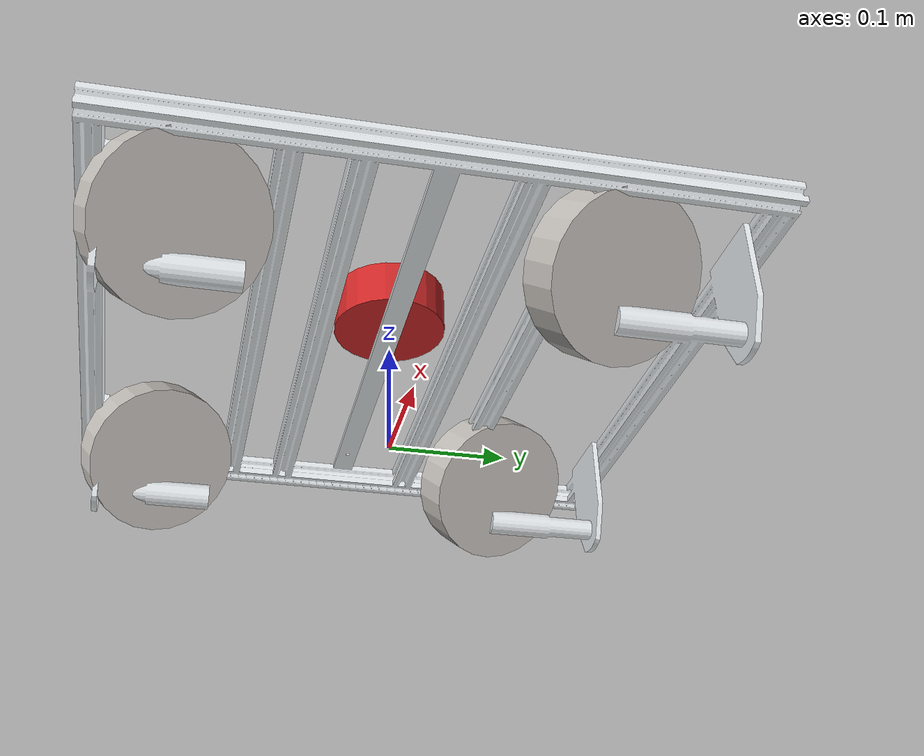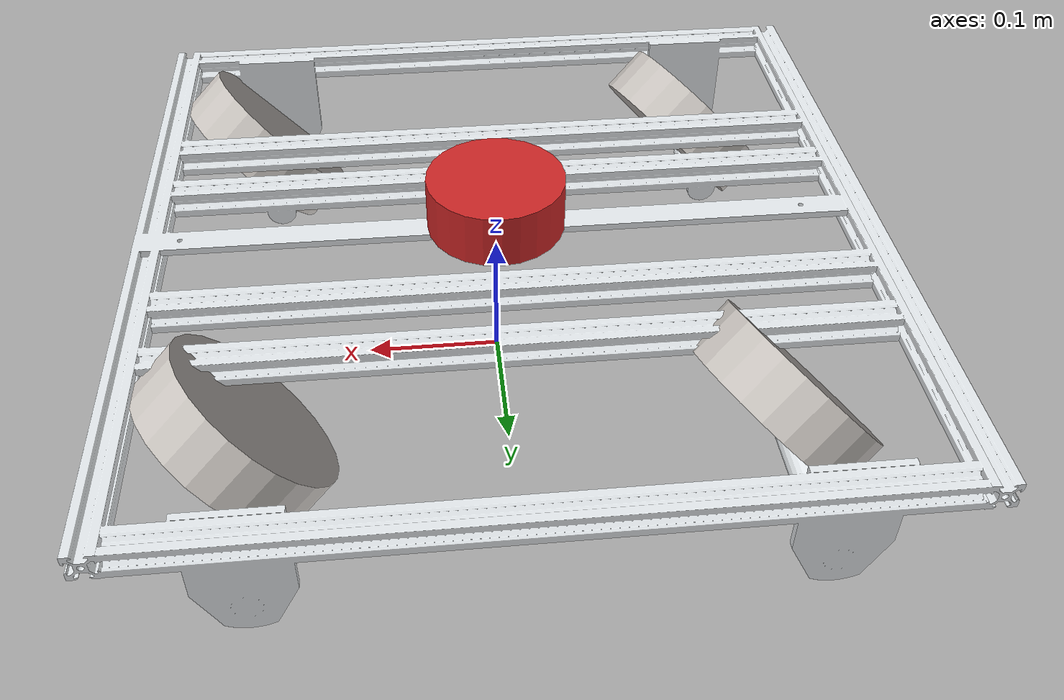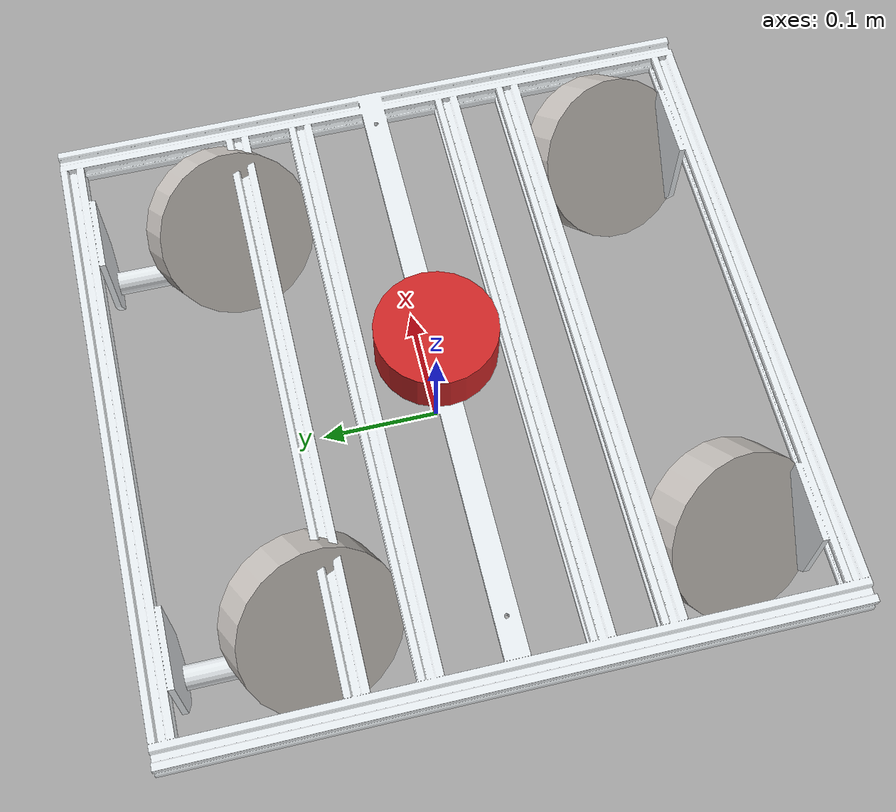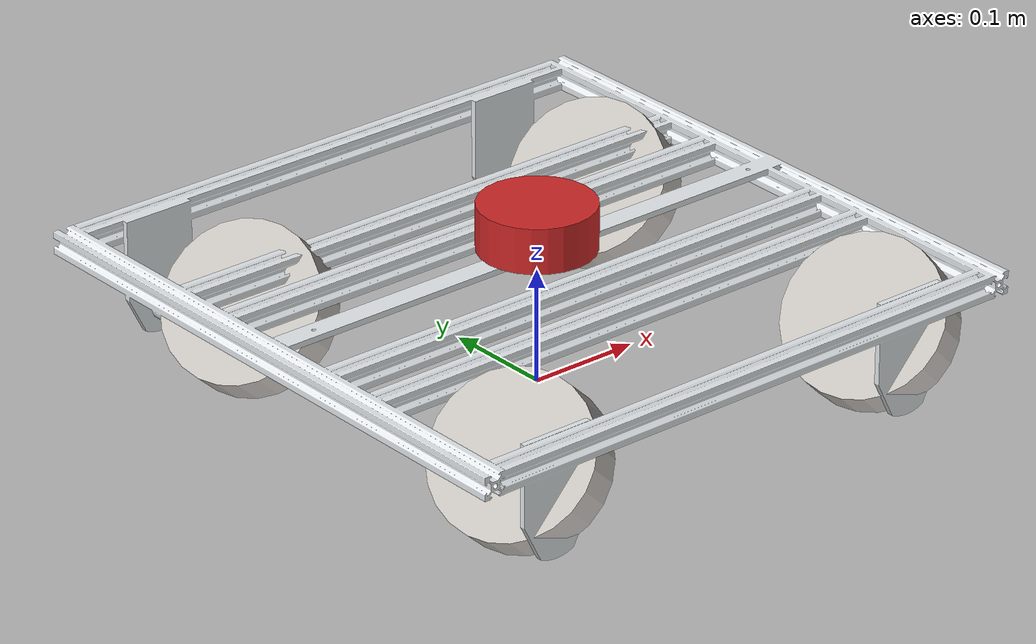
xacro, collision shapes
<?xml version="1.0"?>
<robot xmlns:xacro="http://www.ros.org/wiki/xacro" name="mecanum" >

  <link name="base_footprint_mec">
  </link>
  <joint name="base_link_mec_to_base_footprint_mec" type="fixed">
    <origin xyz="0 0 0.12" rpy="0 0 -1.57"/>
    <parent link="base_footprint_mec"/>
    <child link="base_link_mec"/>
  </joint>

  <link name="laser_mec">
    <visual>
      <geometry>
        <cylinder radius="0.05" length="0.04"/>
      </geometry>
    </visual>
    <collision>
      <geometry>
        <cylinder radius="0.05" length="0.04"/>
      </geometry>
    </collision>
    <inertial>
      <origin
        xyz="0 0 0"
        rpy="0 0 0" />
      <mass
        value="0.01" />
      <inertia
        ixx="0.01" ixy="0.0" ixz="0.0"
        iyy="0.01" iyz="0.0"
        izz="0.01"/>
    </inertial>
  </link>

  <joint name="laser_joint" type="fixed">
    <origin xyz="0 0 0.02" rpy="0 0 0"/>
    <parent link="base_link_mec"/>
    <child link="laser_mec"/>
  </joint>

  <link
    name="base_link_mec">
    <inertial>
      <origin
        xyz="-1.14613076807046E-08 -4.91918539569092E-07 -0.0135289818533382"
        rpy="0 0 0" />
      <mass
        value="0.5" />
      <inertia
        ixx="0.01" ixy="0.0" ixz="0.0"
        iyy="0.01" iyz="0.0"
        izz="0.01"/>
    </inertial>
    <visual>
      <origin
        xyz="0 0 0"
        rpy="0 0 0" />
      <geometry>
        <mesh
          filename="file:///$(find my_robot_description)/meshes/mecanum_meshes/base_link.STL" />
      </geometry>
      <material
        name="">
        <color
          rgba="0.898039215686275 0.917647058823529 0.929411764705882 1" />
      </material>
    </visual>
    <collision>
      <origin
        xyz="0 0 0"
        rpy="0 0 0" />
      <geometry>
        <mesh
          filename="file:///$(find my_robot_description)/meshes/mecanum_meshes/base_link.STL" />
      </geometry>
    </collision>
  </link>

  <link
    name="wheel_fr_right">
    <inertial>
      <origin
        xyz="0.0194370630585373 -0.0176353488184189 0.00817275304865103"
        rpy="0 0 0" />
      <mass
        value="0.0002" />
      <inertia
        ixx="0.01" ixy="0.0" ixz="0.0"
        iyy="0.01" iyz="0.0"
        izz="0.01"/>
    </inertial>
    <visual>
      <origin
        xyz="0 0 0"
        rpy="0 0 0" />
      <geometry>
        <mesh
          filename="file:///$(find my_robot_description)/meshes/mecanum_meshes/wheel_fr_right.STL" />
      </geometry>
      <material
        name="">
        <color
          rgba="0.776470588235294 0.756862745098039 0.737254901960784 1" />
      </material>
    </visual>
    <collision>
      <origin
        xyz="0 0 0"
        rpy="0 0 0" />
      <geometry>
        <cylinder radius="0.07" length="0.04" />
      </geometry>
    </collision>
  </link>
  <joint
    name="joint_fr_right"
    type="fixed">
    <origin
      xyz="0.196431540449915 0.18250000000009 -0.0500000000000465"
      rpy="2.56826265176299 -0.701812030330357 2.7542816171153" />
    <parent
      link="base_link_mec" />
    <child
      link="wheel_fr_right" />
    <axis
      xyz="0.707106781183754 -0.64156167526822 0.297319048886856" />

  </joint>
  <link
    name="wheel_bk_right">
    <inertial>
      <origin
        xyz="0.0194370630585368 -0.017635348818419 0.00817275304865139"
        rpy="0 0 0" />
      <mass
        value="0.0002" />
      <inertia
        ixx="0.01" ixy="0.0" ixz="0.0"
        iyy="0.01" iyz="0.0"
        izz="0.01"/>
    </inertial>
    <visual>
      <origin
        xyz="0 0 0"
        rpy="0 0 0" />
      <geometry>
        <mesh
          filename="file:///$(find my_robot_description)/meshes/mecanum_meshes/wheel_bk_right.STL" />
      </geometry>
      <material
        name="">
        <color
          rgba="0.776470588235294 0.756862745098039 0.737254901960784 1" />
      </material>
    </visual>
    <collision>
      <origin
        xyz="0 0 0"
        rpy="0 0 0" />
      <geometry>
        <cylinder radius="0.07" length="0.04" />
      </geometry>
    </collision>
  </link>
  <joint
    name="joint_bk_right"
    type="fixed">
    <origin
      xyz="0.196431540449915 -0.182499999999932 -0.0500000000000465"
      rpy="2.56826265176299 -0.701812030330358 2.7542816171153" />
    <parent
      link="base_link_mec" />
    <child
      link="wheel_bk_right" />
    <axis
      xyz="0.707106781183753 -0.641561675268222 0.297319048886854" />
  </joint>

  <link
    name="wheel_fr_left">
    <inertial>
      <origin
        xyz="0.0194370630585371 -0.0176353488184191 0.00817275304865112"
        rpy="0 0 0" />
      <mass
        value="0.0002" />
      <inertia
        ixx="0.01" ixy="0.0" ixz="0.0"
        iyy="0.01" iyz="0.0"
        izz="0.01"/>
    </inertial>
    <visual>
      <origin
        xyz="0 0 0"
        rpy="0 0 0" />
      <geometry>
        <mesh
          filename="file:///$(find my_robot_description)/meshes/mecanum_meshes/wheel_fr_left.STL" />
      </geometry>
      <material
        name="">
        <color
          rgba="0.776470588235294 0.756862745098039 0.737254901960784 1" />
      </material>
    </visual>
    <collision>
      <origin
        xyz="0 0 0"
        rpy="0 0 0" />
      <geometry>
        <cylinder radius="0.07" length="0.04" />
      </geometry>
    </collision>
  </link>
  <joint
    name="joint_fr_left"
    type="fixed">
    <origin
      xyz="-0.141459172223538 0.18250000000009 -0.0500000000000464"
      rpy="2.56826265176299 -0.701812030330358 2.7542816171153" />
    <parent
      link="base_link_mec" />
    <child
      link="wheel_fr_left" />
    <axis
      xyz="0.707106781183754 -0.641561675268221 0.297319048886855" />
  </joint>

  <link
    name="wheel_bk_left">
    <inertial>
      <origin
        xyz="0.019437063058537 -0.0176353488184191 0.00817275304865073"
        rpy="0 0 0" />
      <mass
        value="0.0002" />
      <inertia
        ixx="0.01" ixy="0.0" ixz="0.0"
        iyy="0.01" iyz="0.0"
        izz="0.01"/>
    </inertial>
    <visual>
      <origin
        xyz="0 0 0"
        rpy="0 0 0" />
      <geometry>
        <mesh
          filename="file:///$(find my_robot_description)/meshes/mecanum_meshes/wheel_bk_left.STL" />
      </geometry>
      <material
        name="">
        <color
          rgba="0.776470588235294 0.756862745098039 0.737254901960784 1" />
      </material>
    </visual>
    <collision>
      <origin
        xyz="0 0 0"
        rpy="0 0 0" />
      <geometry>
        <cylinder radius="0.07" length="0.04" />
      </geometry>
    </collision>
  </link>
  <joint
    name="joint_bk_left"
    type="fixed">
    <origin
      xyz="-0.141459172223538 -0.182499999999932 -0.0500000000000464"
      rpy="2.56826265176298 -0.701812030330358 2.7542816171153" />
    <parent
      link="base_link_mec" />
    <child
      link="wheel_bk_left" />
    <axis
      xyz="0.707106781183753 -0.641561675268222 0.297319048886854" />

  </joint>

<gazebo>
  <plugin name="gazebo_ros_planar_move" filename="libgazebo_ros_planar_move.so">

    <ros>

      <!-- Add a namespace -->
      <namespace>mec</namespace>

      <!-- Remap the default topic -->
      <remapping>/mec/cmd_vel:=/cmd_vel_follower</remapping>
      <remapping>odom:=odom</remapping>

    </ros>

    <update_rate>100</update_rate>
    <publish_rate>10</publish_rate>

    <!-- output -->
    <publish_odom>true</publish_odom>
    <publish_odom_tf>true</publish_odom_tf>

    <odometry_frame>mec_odom</odometry_frame>
    <robot_base_frame>base_footprint_mec</robot_base_frame>
    <publish_wheel_tf>true</publish_wheel_tf>

    <covariance_x>0.0001</covariance_x>
    <covariance_y>0.0001</covariance_y>
    <covariance_yaw>0.01</covariance_yaw>

  </plugin>
</gazebo>

  <gazebo reference="laser_mec">
    <material>Gazebo/Red</material>

    <sensor name="laser" type="ray">
      <namespace>mec</namespace>
      <pose>0 0 0 0 0 0</pose>
      <visualize>false</visualize>
      <update_rate>10</update_rate>
      <ray>
        <scan>
          <horizontal>
            <samples>360</samples>
            <min_angle>-3.14</min_angle>
            <max_angle>3.14</max_angle>
          </horizontal>
        </scan>
        <range>
          <min>0.3</min>
          <max>12</max>
        </range>
      </ray>
      <plugin name="laser_mec" filename="libgazebo_ros_ray_sensor.so">
        <namespace>mec</namespace>
        <ros>
          <argument>/mec/out:=/scan_mec</argument>
        </ros>
        <output_type>sensor_msgs/LaserScan</output_type>
        <frame_name>laser_mec</frame_name>
      </plugin>
    </sensor>
  </gazebo>

</robot>
